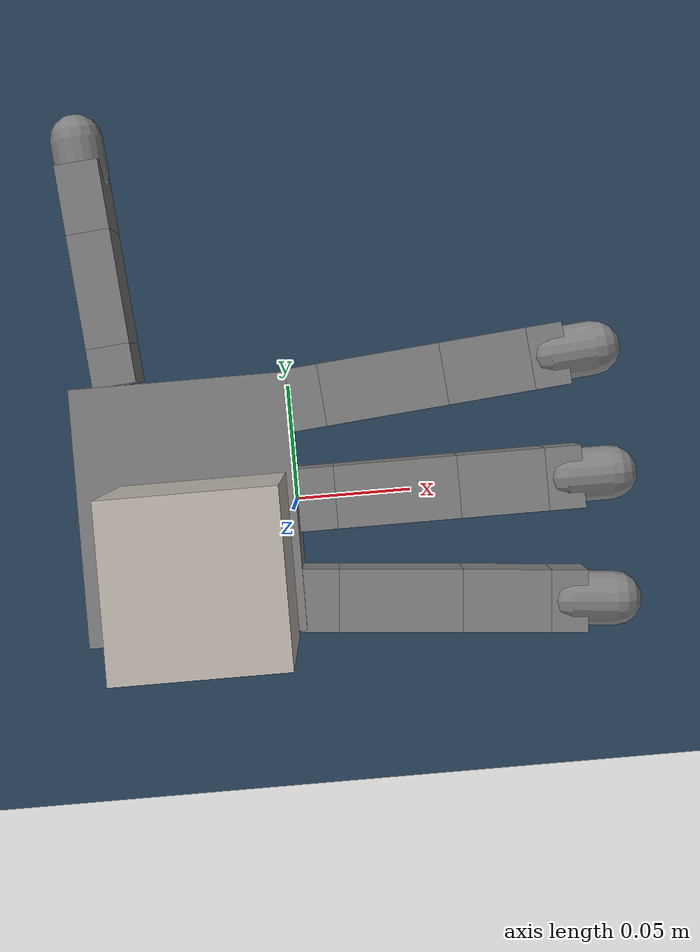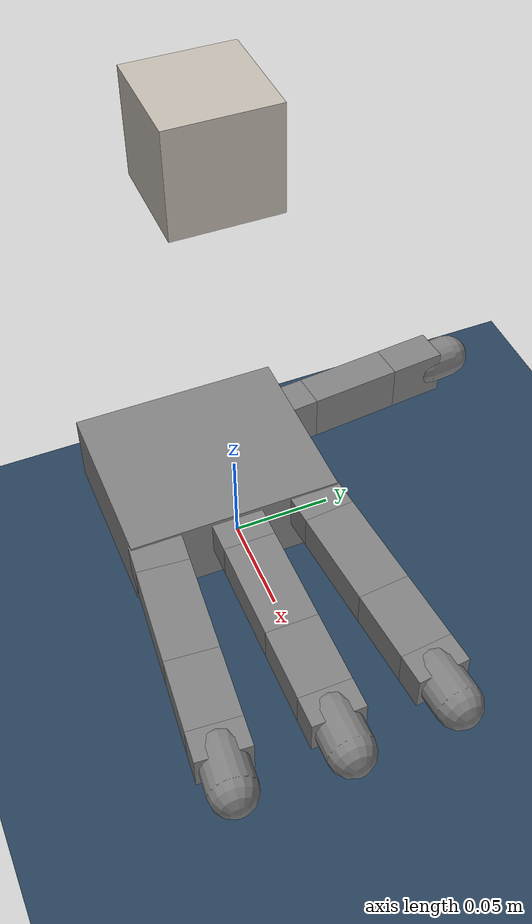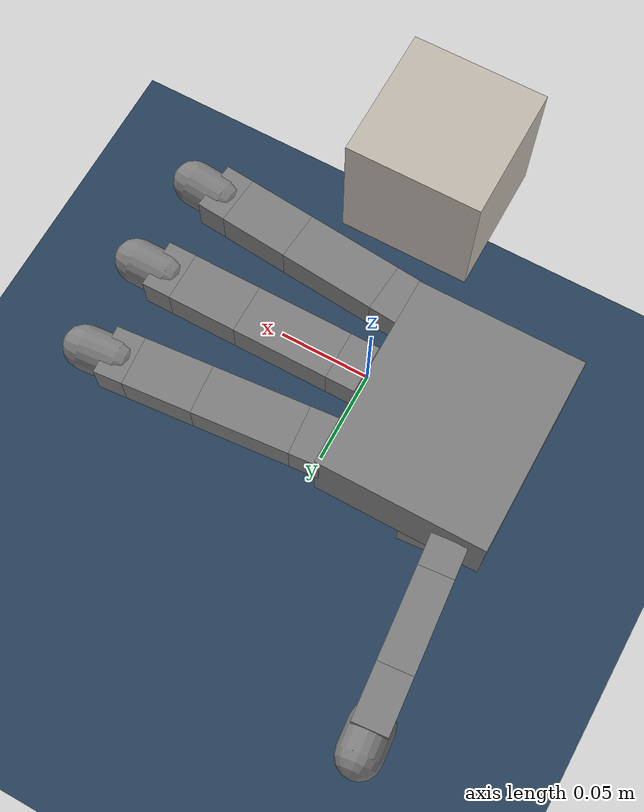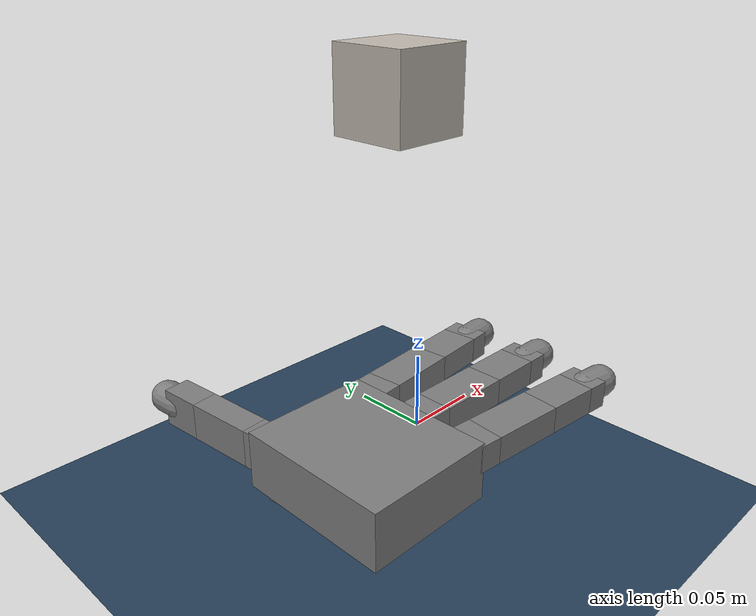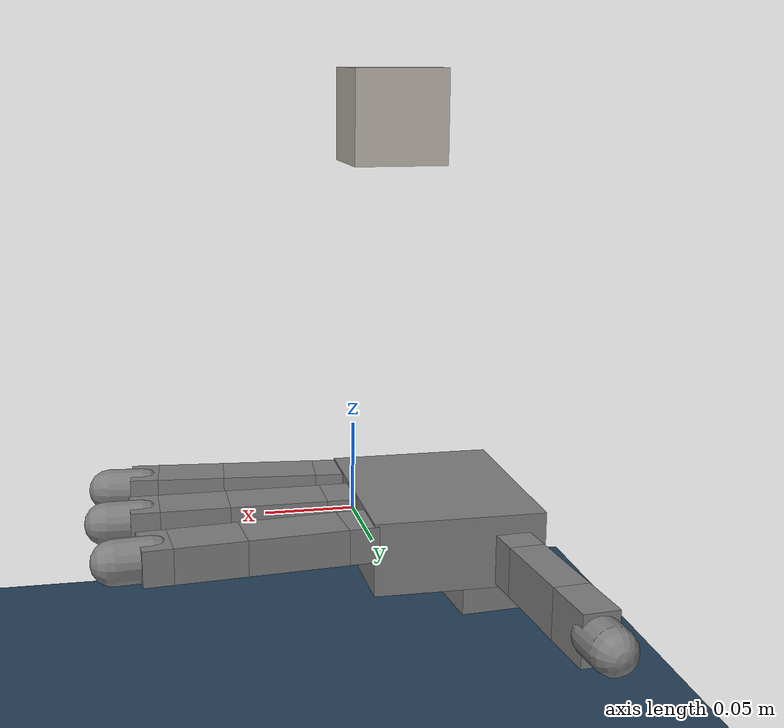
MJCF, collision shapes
<mujoco model="left_allegro_hand scene">
  <include file="left_hand.xml"/>

  <statistic center="0 0 0.1" extent="0.3"/>

  <visual>
    <rgba haze="0.15 0.25 0.35 1"/>
    <quality shadowsize="8192"/>
    <global azimuth="220" elevation="-40"/>
  </visual>

  <asset>
    <texture type="skybox" builtin="gradient" rgb1="0.3 0.5 0.7" rgb2="0 0 0" width="512" height="3072"/>
    <texture type="2d" name="groundplane" builtin="checker" mark="edge" rgb1="0.2 0.3 0.4" rgb2="0.1 0.2 0.3"
      markrgb="0.8 0.8 0.8" width="300" height="300"/>
    <material name="groundplane" texture="groundplane" texuniform="true" texrepeat="5 5" reflectance="0.2"/>

    <!-- Cube texture -->
    <texture name="cube_surface" file="assets/iris_block.png" gridsize="3 4" gridlayout=".U..LFRB.D.."/>
    <material name="cube_mat" texture="cube_surface" specular="0.5" shininess="0.25"/>
  </asset>

  <!-- Set initial keyframes -->
  <keyframe>
    <!-- Initial grasp configuration: fingers wrapped around ball -->
    <key name="initial_grasp"
         qpos="0.07 1.45 0.76 0.11   0.03 0.96 0.85 0.31   0.05 1.3 0.4 0.47   0.77 1.16 0.74 0.72  -0.02 0.00 0.11  1 0 0 0"/>
         <!-- ctrl="0.05 1.22 0.4 0.47   0.03 1.02 0.84 0.31   -0.06 1.45 0.76 0.10   0.8 1.16 0.74 0.72" -->

    <!-- Initial grasp configuration: fingers wrapped around cube -->
    <key name="initial_grasp_cube"
         qpos="-0.15 1.35 0.76 0.11   0.03 1.01 0.6 0.58   -0.00 1.25 0.4 0.47   0.9 1.16 0.87 0.72  -0.005 0.01 0.11  1 0 0 0"/>
         <!-- ctrl="-0.00 1.26 0.4 0.47   0.03 1.03 0.65 0.58   -0.18 1.35 0.76 0.10   0.9 1.14 0.88 0.72" -->

    <!-- Open hand configuration for testing (no object interaction) -->
    <key name="open_hand_test"
         qpos="0.0 0.5 0.3 0.2   0.0 0.5 0.3 0.2   0.0 0.5 0.3 0.2   0.5 0.5 0.3 0.2    0.00 0.06 0.50  1 0 0 0"/>
         <!-- ctrl="0.0 0.5 0.3 0.2   0.0 0.5 0.3 0.2   0.0 0.5 0.3 0.2   0.5 0.5 0.3 0.2" -->

  </keyframe>

  <worldbody>
    <light pos="0 0 1"/>
    <light pos="0.3 0 1.5" dir="0 0 -1" directional="true"/>
    <geom name="floor" pos="0 0 -0.1" size="0 0 0.05" type="plane" material="groundplane"/>

  <!-- Cube object positioned between fingers -->
    <body name="object" pos="-0.02 0.00 0.22">
      <freejoint/>
      <geom name="object_geom" type="box" size="0.025 0.025 0.025"
        material="cube_mat" condim="6" priority="1"
        friction="0.8 0.005 0.005" mass="0.1"/>
      <site name="object_center" pos="0 0 0" size="0.005" rgba="1 0 0 1"/>
    </body>
  </worldbody>
</mujoco>

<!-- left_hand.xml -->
<mujoco model="allegro_left">
  <compiler angle="radian" meshdir="assets" autolimits="true"/>

  <option cone="elliptic" impratio="10"/>

  <default>
    <default class="allegro_left">
      <joint axis="0 1 0" damping="0.1"/>
      <position kp="3" kv="0.1" forcerange="-0.5 0.5"/>
      <geom density="800"/>

      <default class="visual">
        <geom type="mesh" contype="0" conaffinity="0" group="2" material="black"/>
        <default class="palm_visual">
          <geom mesh="base_link"/>
        </default>
        <default class="base_visual">
          <geom mesh="link_0.0"/>
        </default>
        <default class="proximal_visual">
          <geom mesh="link_1.0"/>
        </default>
        <default class="medial_visual">
          <geom mesh="link_2.0"/>
        </default>
        <default class="distal_visual">
          <geom mesh="link_3.0"/>
        </default>
        <default class="fingertip_visual">
          <geom pos="0 0 0.0267" material="white" mesh="link_3.0_tip"/>
        </default>
        <default class="thumbtip_visual">
          <geom pos="0 0 0.0423" material="white" mesh="link_15.0_tip"/>
        </default>
      </default>

      <default class="collision">
        <geom group="3" type="box" mass="0"/>
        <default class="palm_collision">
          <geom size="0.0204 0.0565 0.0475" pos="-0.0093 0 -0.0475"/>
        </default>
        <default class="base_collision">
          <geom size="0.0098 0.01375 0.0082" pos="0 0 0.0082"/>
          <default class="thumb_base_collision">
            <geom size="0.0179 0.017 0.02275" pos="-0.0179 0.009 0.0145"/>
          </default>
        </default>
        <default class="proximal_collision">
          <geom size="0.0098 0.01375 0.027" pos="0 0 0.027"/>
          <default class="thumb_proximal_collision">
            <geom size="0.0098 0.01375 0.00885" pos="0 0 0.00885"/>
          </default>
        </default>
        <default class="medial_collision">
          <geom size="0.0098 0.01375 0.0192" pos="0 0 0.0192"/>
          <default class="thumb_medial_collision">
            <geom size="0.0098 0.01375 0.0257" pos="0 0 0.0257"/>
          </default>
        </default>
        <default class="distal_collision">
          <geom size="0.0098 0.01375 0.008" pos="0 0 0.008"/>
          <default class="thumb_distal_collision">
            <geom size="0.0098 0.01375 0.0157" pos="0 0 0.0157"/>
          </default>
        </default>
        <default class="fingertip_collision">
          <geom type="capsule" size="0.012 0.01" pos="0 0 0.019"/>
          <default class="thumbtip_collision">
            <geom type="capsule" size="0.012 0.008" pos="0 0 0.035"/>
          </default>
        </default>
      </default>

      <default class="base">
        <joint axis="0 0 1" range="-0.47 0.47"/>
        <position ctrlrange="-0.47 0.47"/>
      </default>
      <default class="proximal">
        <joint range="-0.196 1.61"/>
        <position ctrlrange="-0.196 1.61"/>
      </default>
      <default class="medial">
        <joint range="-0.174 1.709"/>
        <position ctrlrange="-0.174 1.709"/>
      </default>
      <default class="distal">
        <joint range="-0.227 1.618"/>
        <position ctrlrange="-0.227 1.618"/>
      </default>
      <default class="thumb_base">
        <joint axis="1 0 0" range="0.263 1.396"/>
        <position ctrlrange="0.263 1.396"/>
      </default>
      <default class="thumb_proximal">
        <joint axis="0 0 -1" range="-0.105 1.163"/>
        <position ctrlrange="-0.105 1.163"/>
      </default>
      <default class="thumb_medial">
        <joint range="-0.189 1.644"/>
        <position ctrlrange="-0.189 1.644"/>
      </default>
      <default class="thumb_distal">
        <joint range="-0.162 1.719"/>
        <position ctrlrange="-0.162 1.719"/>
      </default>
    </default>
  </default>

  <asset>
    <material name="black" rgba="0.2 0.2 0.2 1"/>
    <material name="white" rgba="0.9 0.9 0.9 1"/>

    <mesh file="base_link_left.stl"/>
    <mesh file="link_0.0.stl"/>
    <mesh file="link_1.0.stl"/>
    <mesh file="link_2.0.stl"/>
    <mesh file="link_3.0.stl"/>
    <mesh file="link_3.0_tip.stl"/>
    <mesh file="link_12.0_left.stl"/>
    <mesh file="link_13.0.stl"/>
    <mesh file="link_14.0.stl"/>
    <mesh file="link_15.0.stl"/>
    <mesh file="link_15.0_tip.stl"/>
  </asset>

  <worldbody>
    <body name="palm" quat="0 1 0 1" childclass="allegro_left">
      <geom quat="1 -1 0 0" class="palm_visual" mesh="base_link_left"/>
      <geom class="palm_collision"/>
      <!-- Ring finger -->
      <body name="rf_base" pos="0 0.0435 -0.001542" quat="0.999048 -0.0436194 0 0">
        <joint name="rfj0" class="base"/>
        <geom class="base_visual"/>
        <geom class="base_collision"/>
        <body name="rf_proximal" pos="0 0 0.0164">
          <joint name="rfj1" class="proximal"/>
          <geom class="proximal_visual"/>
          <geom class="proximal_collision"/>
          <body name="rf_medial" pos="0 0 0.054">
            <joint name="rfj2" class="medial"/>
            <geom class="medial_visual"/>
            <geom class="medial_collision"/>
            <body name="rf_distal" pos="0 0 0.0384">
              <joint name="rfj3" class="distal"/>
              <geom class="distal_visual"/>
              <geom class="distal_collision"/>
              <body name="rf_tip">
                <geom class="fingertip_visual"/>
                <geom class="fingertip_collision"/>
              </body>
            </body>
          </body>
        </body>
      </body>
      <!-- Middle finger -->
      <body name="mf_base" pos="0 0 0.0007">
        <joint name="mfj0" class="base"/>
        <geom class="base_visual"/>
        <geom class="base_collision"/>
        <body name="mf_proximal" pos="0 0 0.0164">
          <joint name="mfj1" class="proximal"/>
          <geom class="proximal_visual"/>
          <geom class="proximal_collision"/>
          <body name="mf_medial" pos="0 0 0.054">
            <joint name="mfj2" class="medial"/>
            <geom class="medial_visual"/>
            <geom class="medial_collision"/>
            <body name="mf_distal" pos="0 0 0.0384">
              <joint name="mfj3" class="distal"/>
              <geom class="distal_visual"/>
              <geom class="distal_collision"/>
              <body name="mf_tip">
                <geom class="fingertip_visual"/>
                <geom class="fingertip_collision"/>
              </body>
            </body>
          </body>
        </body>
      </body>
      <!-- First finger -->
      <body name="ff_base" pos="0 -0.0435 -0.001542" quat="0.999048 0.0436194 0 0">
        <joint name="ffj0" class="base"/>
        <geom class="base_visual"/>
        <geom class="base_collision"/>
        <body name="ff_proximal" pos="0 0 0.0164">
          <joint name="ffj1" class="proximal"/>
          <geom class="proximal_visual"/>
          <geom class="proximal_collision"/>
          <body name="ff_medial" pos="0 0 0.054">
            <joint name="ffj2" class="medial"/>
            <geom class="medial_visual"/>
            <geom class="medial_collision"/>
            <body name="ff_distal" pos="0 0 0.0384">
              <joint name="ffj3" class="distal"/>
              <geom class="distal_visual"/>
              <geom class="distal_collision"/>
              <body name="ff_tip">
                <geom class="fingertip_visual"/>
                <geom class="fingertip_collision"/>
              </body>
            </body>
          </body>
        </body>
      </body>
      <!-- Thumb -->
      <body name="th_base" pos="-0.0182 -0.019333 -0.045987" quat="0.477714 0.521334 -0.521334 0.477714">
        <joint name="thj0" class="thumb_base"/>
        <geom quat="0 1 0 0" class="visual" mesh="link_12.0_left"/>
        <geom class="thumb_base_collision"/>
        <body name="th_proximal" pos="-0.027 -0.005 0.0399">
          <joint name="thj1" class="thumb_proximal"/>
          <geom class="visual" mesh="link_13.0"/>
          <geom class="thumb_proximal_collision"/>
          <body name="th_medial" pos="0 0 0.0177">
            <joint name="thj2" class="thumb_medial"/>
            <geom class="visual" mesh="link_14.0"/>
            <geom class="thumb_medial_collision"/>
            <body name="th_distal" pos="0 0 0.0514">
              <joint name="thj3" class="thumb_distal"/>
              <geom class="visual" mesh="link_15.0"/>
              <geom class="thumb_distal_collision"/>
              <body name="th_tip">
                <geom class="thumbtip_visual"/>
                <geom class="thumbtip_collision"/>
              </body>
            </body>
          </body>
        </body>
      </body>
    </body>
  </worldbody>

  <contact>
    <exclude body1="palm" body2="ff_base"/>
    <exclude body1="palm" body2="mf_base"/>
    <exclude body1="palm" body2="rf_base"/>
    <exclude body1="palm" body2="th_base"/>
    <exclude body1="palm" body2="th_proximal"/>
  </contact>

  <actuator>
    <motor name="ffa0" joint="ffj0" gear="1" ctrllimited="true" ctrlrange="-0.5 0.5"/>
    <motor name="ffa1" joint="ffj1" gear="1" ctrllimited="true" ctrlrange="-0.5 0.5"/>
    <motor name="ffa2" joint="ffj2" gear="1" ctrllimited="true" ctrlrange="-0.5 0.5"/>
    <motor name="ffa3" joint="ffj3" gear="1" ctrllimited="true" ctrlrange="-0.5 0.5"/>
    <motor name="mfa0" joint="mfj0" gear="1" ctrllimited="true" ctrlrange="-0.5 0.5"/>
    <motor name="mfa1" joint="mfj1" gear="1" ctrllimited="true" ctrlrange="-0.5 0.5"/>
    <motor name="mfa2" joint="mfj2" gear="1" ctrllimited="true" ctrlrange="-0.5 0.5"/>
    <motor name="mfa3" joint="mfj3" gear="1" ctrllimited="true" ctrlrange="-0.5 0.5"/>
    <motor name="rfa0" joint="rfj0" gear="1" ctrllimited="true" ctrlrange="-0.5 0.5"/>
    <motor name="rfa1" joint="rfj1" gear="1" ctrllimited="true" ctrlrange="-0.5 0.5"/>
    <motor name="rfa2" joint="rfj2" gear="1" ctrllimited="true" ctrlrange="-0.5 0.5"/>
    <motor name="rfa3" joint="rfj3" gear="1" ctrllimited="true" ctrlrange="-0.5 0.5"/>
    <motor name="tha0" joint="thj0" gear="1" ctrllimited="true" ctrlrange="-0.5 0.5"/>
    <motor name="tha1" joint="thj1" gear="1" ctrllimited="true" ctrlrange="-0.5 0.5"/>
    <motor name="tha2" joint="thj2" gear="1" ctrllimited="true" ctrlrange="-0.5 0.5"/>
    <motor name="tha3" joint="thj3" gear="1" ctrllimited="true" ctrlrange="-0.5 0.5"/>
  </actuator>
</mujoco>
